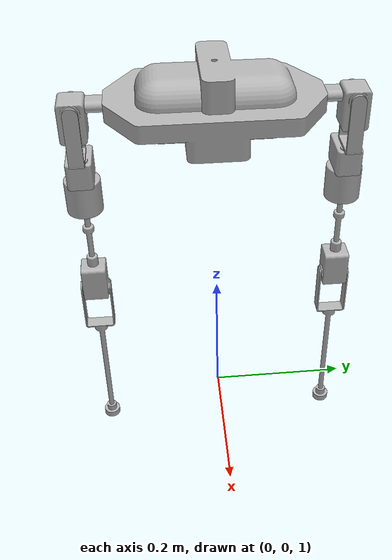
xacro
<?xml version="1.0" ?>
<robot name="antrop_arms" xmlns:xacro="http://www.ros.org/wiki/xacro">

<xacro:include filename="$(find antrop_arms_description)/urdf/materials.xacro" />
<xacro:include filename="$(find antrop_arms_description)/urdf/antrop_arms.trans" />
<xacro:include filename="$(find antrop_arms_description)/urdf/antrop_arms.gazebo" />
<!--Virtual links only used for simulation work-->
<link name="world"/>
<link name="right_ee_link"/>
<link name="left_ee_link"/>

<!--Actual robot links-->
<link name="base_link">
  <inertial>
    <origin xyz="1.066898751021674e-15 6.668117193885462e-17 -0.0018137714290285523" rpy="0 0 0"/>
    <mass value="17.13115280088791"/>
    <inertia ixx="0.071673" iyy="0.032901" izz="0.085379" ixy="0.0" iyz="0.0" ixz="0.0"/>
  </inertial>
  <visual>
    <origin xyz="0 0 0" rpy="0 0 0"/>
    <geometry>
      <mesh filename="package://antrop_arms_description/meshes/base_link.stl" scale="0.001 0.001 0.001"/>
    </geometry>
    <material name="silver"/>
  </visual>
  <collision>
    <origin xyz="0 0 0" rpy="0 0 0"/>
    <geometry>
      <mesh filename="package://antrop_arms_description/meshes/base_link.stl" scale="0.001 0.001 0.001"/>
    </geometry>
  </collision>
</link>

<!--Left side of the robot-->

<!--Left shoulder-->
<link name="Shoulder_Yaw_Structure_v1_1">
  <inertial>
    <origin xyz="-0.021135735062036764 -8.326672684688674e-16 -0.04093696874713262" rpy="0 0 0"/>
    <mass value="0.13081573332382615"/>
    <inertia ixx="9.8e-05" iyy="0.000152" izz="6.3e-05" ixy="-0.0" iyz="0.0" ixz="1e-06"/>
  </inertial>
  <visual>
    <origin xyz="-0.021 -0.18 0.0" rpy="0 0 0"/>
    <geometry>
      <mesh filename="package://antrop_arms_description/meshes/Shoulder_Yaw_Structure_v1_1.stl" scale="0.001 0.001 0.001"/>
    </geometry>
    <material name="silver"/>
  </visual>
  <collision>
    <origin xyz="-0.021 -0.18 0.0" rpy="0 0 0"/>
    <geometry>
      <mesh filename="package://antrop_arms_description/meshes/Shoulder_Yaw_Structure_v1_1.stl" scale="0.001 0.001 0.001"/>
    </geometry>
  </collision>
</link>

<link name="Servo_Herkulex_v1_1">
  <inertial>
    <origin xyz="-0.015296200031691265 -5.551115123125783e-17 -0.02073708217051337" rpy="0 0 0"/>
    <mass value="0.5836410679799175"/>
    <inertia ixx="0.00013" iyy="0.000221" izz="0.000207" ixy="0.0" iyz="0.0" ixz="-2e-06"/>
  </inertial>
  <visual>
    <origin xyz="0.0 -0.18 0.075" rpy="0 0 0"/>
    <geometry>
      <mesh filename="package://antrop_arms_description/meshes/Servo_Herkulex_v1_1.stl" scale="0.001 0.001 0.001"/>
    </geometry>
    <material name="silver"/>
  </visual>
  <collision>
    <origin xyz="0.0 -0.18 0.075" rpy="0 0 0"/>
    <geometry>
      <mesh filename="package://antrop_arms_description/meshes/Servo_Herkulex_v1_1.stl" scale="0.001 0.001 0.001"/>
    </geometry>
  </collision>
</link>

<link name="Shoulder_Yaw_Transmission_v1_1">
  <inertial>
    <origin xyz="-1.8166024240429124e-14 -5.551115123125783e-17 -0.023088428353467902" rpy="0 0 0"/>
    <mass value="0.7529944150379378"/>
    <inertia ixx="0.000272" iyy="0.000272" izz="0.000239" ixy="-0.0" iyz="-0.0" ixz="0.0"/>
  </inertial>
  <visual>
    <origin xyz="0.0155 -0.18 0.115" rpy="0 0 0"/>
    <geometry>
      <mesh filename="package://antrop_arms_description/meshes/Shoulder_Yaw_Transmission_v1_1.stl" scale="0.001 0.001 0.001"/>
    </geometry>
    <material name="silver"/>
  </visual>
  <collision>
    <origin xyz="0.0155 -0.18 0.115" rpy="0 0 0"/>
    <geometry>
      <mesh filename="package://antrop_arms_description/meshes/Shoulder_Yaw_Transmission_v1_1.stl" scale="0.001 0.001 0.001"/>
    </geometry>
  </collision>
</link>

<link name="shoulder_left_link_1">
  <inertial>
    <origin xyz="-0.0002500317321533693 0.035918090920304124 -0.013543028885077059" rpy="0 0 0"/>
    <mass value="0.6591423872621155"/>
    <inertia ixx="0.000324" iyy="0.000242" izz="0.000235" ixy="-9e-06" iyz="3.6e-05" ixz="2e-06"/>
  </inertial>
  <visual>
    <origin xyz="0.0 -0.14 -0.0" rpy="0 0 0"/>
    <geometry>
      <mesh filename="package://antrop_arms_description/meshes/shoulder_left_link_1.stl" scale="0.001 0.001 0.001"/>
    </geometry>
    <material name="silver"/>
  </visual>
  <collision>
    <origin xyz="0.0 -0.14 -0.0" rpy="0 0 0"/>
    <geometry>
      <mesh filename="package://antrop_arms_description/meshes/shoulder_left_link_1.stl" scale="0.001 0.001 0.001"/>
    </geometry>
  </collision>
</link>

<!--Left elbow-->
<link name="elbow_left_link_1">
  <inertial>
    <origin xyz="-1.899869150889799e-14 -0.00021228541858173133 -0.11684928259378977" rpy="0 0 0"/>
    <mass value="0.6214584962841803"/>
    <inertia ixx="0.000538" iyy="0.000531" izz="0.000118" ixy="0.0" iyz="-3e-06" ixz="0.0"/>
  </inertial>
  <visual>
    <origin xyz="0.0155 -0.18 0.163" rpy="0 0 0"/>
    <geometry>
      <mesh filename="package://antrop_arms_description/meshes/elbow_left_link_1.stl" scale="0.001 0.001 0.001"/>
    </geometry>
    <material name="silver"/>
  </visual>
  <collision>
    <origin xyz="0.0155 -0.18 0.163" rpy="0 0 0"/>
    <geometry>
      <mesh filename="package://antrop_arms_description/meshes/elbow_left_link_1.stl" scale="0.001 0.001 0.001"/>
    </geometry>
  </collision>
</link>

<!--Left forearm-->
<link name="forearm_left_link_1">
  <inertial>
    <origin xyz="-2.4015511801422917e-14 -0.020000000000116203 -0.14499270392199487" rpy="0 0 0"/>
    <mass value="0.20799291557495453"/>
    <inertia ixx="0.001901" iyy="0.001879" izz="3.1e-05" ixy="-0.0" iyz="0.0" ixz="-0.0"/>
  </inertial>
  <visual>
    <origin xyz="0.0155 0.16 0.3025" rpy="0 0 0"/>
    <geometry>
      <mesh filename="package://antrop_arms_description/meshes/forearm_left_link_1.stl" scale="0.001 0.001 0.001"/>
    </geometry>
    <material name="silver"/>
  </visual>
  <collision>
    <origin xyz="0.0155 0.16 0.3025" rpy="0 0 0"/>
    <geometry>
      <mesh filename="package://antrop_arms_description/meshes/forearm_left_link_1.stl" scale="0.001 0.001 0.001"/>
    </geometry>
  </collision>
</link>

<!--Right side of the robot-->

<!--Right shoulder-->

<link name="Shoulder_Yaw_Structure_v1__1__1">
  <inertial>
    <origin xyz="-0.021135735062036733 -9.43689570931383e-16 -0.040936968747132534" rpy="0 0 0"/>
    <mass value="0.13081573332382615"/>
    <inertia ixx="9.8e-05" iyy="0.000152" izz="6.3e-05" ixy="-0.0" iyz="0.0" ixz="1e-06"/>
  </inertial>
  <visual>
    <origin xyz="-0.021 0.18 0.0" rpy="0 0 0"/>
    <geometry>
      <mesh filename="package://antrop_arms_description/meshes/Shoulder_Yaw_Structure_v1__1__1.stl" scale="0.001 0.001 0.001"/>
    </geometry>
    <material name="silver"/>
  </visual>
  <collision>
    <origin xyz="-0.021 0.18 0.0" rpy="0 0 0"/>
    <geometry>
      <mesh filename="package://antrop_arms_description/meshes/Shoulder_Yaw_Structure_v1__1__1.stl" scale="0.001 0.001 0.001"/>
    </geometry>
  </collision>
</link>

<link name="Servo_Herkulex_v1__1__1">
  <inertial>
    <origin xyz="-0.015296200031691375 1.6653345369377348e-16 -0.020737082170513232" rpy="0 0 0"/>
    <mass value="0.5836410679799175"/>
    <inertia ixx="0.00013" iyy="0.000221" izz="0.000207" ixy="0.0" iyz="0.0" ixz="-2e-06"/>
  </inertial>
  <visual>
    <origin xyz="0.0 0.18 0.075" rpy="0 0 0"/>
    <geometry>
      <mesh filename="package://antrop_arms_description/meshes/Servo_Herkulex_v1__1__1.stl" scale="0.001 0.001 0.001"/>
    </geometry>
    <material name="silver"/>
  </visual>
  <collision>
    <origin xyz="0.0 0.18 0.075" rpy="0 0 0"/>
    <geometry>
      <mesh filename="package://antrop_arms_description/meshes/Servo_Herkulex_v1__1__1.stl" scale="0.001 0.001 0.001"/>
    </geometry>
  </collision>
</link>

<link name="Shoulder_Yaw_Transmission_v1__1__1">
  <inertial>
    <origin xyz="-1.8197249262996706e-14 1.942890293094024e-16 -0.023088428353467597" rpy="0 0 0"/>
    <mass value="0.7529944150379378"/>
    <inertia ixx="0.000272" iyy="0.000272" izz="0.000239" ixy="-0.0" iyz="0.0" ixz="0.0"/>
  </inertial>
  <visual>
    <origin xyz="0.0155 0.18 0.115" rpy="0 0 0"/>
    <geometry>
      <mesh filename="package://antrop_arms_description/meshes/Shoulder_Yaw_Transmission_v1__1__1.stl" scale="0.001 0.001 0.001"/>
    </geometry>
    <material name="silver"/>
  </visual>
  <collision>
    <origin xyz="0.0155 0.18 0.115" rpy="0 0 0"/>
    <geometry>
      <mesh filename="package://antrop_arms_description/meshes/Shoulder_Yaw_Transmission_v1__1__1.stl" scale="0.001 0.001 0.001"/>
    </geometry>
  </collision>
</link>

<link name="shoulder_right_link_1">
  <inertial>
    <origin xyz="-0.0002500317321433487 -0.03591809092030432 -0.013543028885077014" rpy="0 0 0"/>
    <mass value="0.6591423872621155"/>
    <inertia ixx="0.000324" iyy="0.000242" izz="0.000235" ixy="9e-06" iyz="-3.6e-05" ixz="2e-06"/>
  </inertial>
  <visual>
    <origin xyz="0.0 0.14 -0.0" rpy="0 0 0"/>
    <geometry>
      <mesh filename="package://antrop_arms_description/meshes/shoulder_right_link_1.stl" scale="0.001 0.001 0.001"/>
    </geometry>
    <material name="silver"/>
  </visual>
  <collision>
    <origin xyz="0.0 0.14 -0.0" rpy="0 0 0"/>
    <geometry>
      <mesh filename="package://antrop_arms_description/meshes/shoulder_right_link_1.stl" scale="0.001 0.001 0.001"/>
    </geometry>
  </collision>
</link>

<!--Right elbow-->
<link name="elbow_right_link_1">
  <inertial>
    <origin xyz="-1.675569405445998e-14 0.0002122854185845624 -0.11684928259381297" rpy="0 0 0"/>
    <mass value="0.6214584962841804"/>
    <inertia ixx="0.000538" iyy="0.000531" izz="0.000118" ixy="-0.0" iyz="3e-06" ixz="0.0"/>
  </inertial>
  <visual>
    <origin xyz="0.0155 0.18 0.163" rpy="0 0 0"/>
    <geometry>
      <mesh filename="package://antrop_arms_description/meshes/elbow_right_link_1.stl" scale="0.001 0.001 0.001"/>
    </geometry>
    <material name="silver"/>
  </visual>
  <collision>
    <origin xyz="0.0155 0.18 0.163" rpy="0 0 0"/>
    <geometry>
      <mesh filename="package://antrop_arms_description/meshes/elbow_right_link_1.stl" scale="0.001 0.001 0.001"/>
    </geometry>
  </collision>
</link>

<!--Right forearm-->
<link name="forearm_right_link_1">
  <inertial>
    <origin xyz="-2.80782341821606e-14 -0.020000000000115925 -0.14499270392199565" rpy="0 0 0"/>
    <mass value="0.20799291557495453"/>
    <inertia ixx="0.001901" iyy="0.001879" izz="3.1e-05" ixy="-0.0" iyz="0.0" ixz="-0.0"/>
  </inertial>
  <visual>
    <origin xyz="0.0155 -0.2 0.3025" rpy="0 0 0"/>
    <geometry>
      <mesh filename="package://antrop_arms_description/meshes/forearm_right_link_1.stl" scale="0.001 0.001 0.001"/>
    </geometry>
    <material name="silver"/>
  </visual>
  <collision>
    <origin xyz="0.0155 -0.2 0.3025" rpy="0 0 0"/>
    <geometry>
      <mesh filename="package://antrop_arms_description/meshes/forearm_right_link_1.stl" scale="0.001 0.001 0.001"/>
    </geometry>
  </collision>
</link>

<!--Robot joints-->
<joint name="base_shoulder_left_joint" type="revolute">
  <origin xyz="0.021 0.04 -0.0" rpy="0 0 0"/>
  <parent link="shoulder_left_link_1"/>
  <child link="Shoulder_Yaw_Structure_v1_1"/>
  <axis xyz="1.0 -0.0 0.0"/>
  <limit effort="20.1" velocity="2" lower="-0.174533" upper="1.5708" />
  <!--Here we should keep in mind exactly which arm we are looking at since the limits are opposite when it comes to upper/lower limit for each side-->
</joint>

<joint name="Rigid3" type="fixed">
  <origin xyz="-0.021 0.0 -0.075" rpy="0 0 0"/>
  <parent link="Shoulder_Yaw_Structure_v1_1"/>
  <child link="Servo_Herkulex_v1_1"/>
</joint>

<joint name="Rigid5" type="fixed">
  <origin xyz="-0.0155 0.0 -0.04" rpy="0 0 0"/>
  <parent link="Servo_Herkulex_v1_1"/>
  <child link="Shoulder_Yaw_Transmission_v1_1"/>
</joint>

<joint name="shoulder_elbow_left_joint" type="revolute">
  <origin xyz="0.0 0.0 -0.048" rpy="0 0 0"/>
  <parent link="Shoulder_Yaw_Transmission_v1_1"/>
  <child link="elbow_left_link_1"/>
  <axis xyz="0.0 0.0 1.0"/>
  <limit effort="20.1" velocity="2" lower="-1.5708" upper="1.5708" />
</joint>

<joint name="base_shoulder_right_joint" type="revolute">
  <origin xyz="0.021 -0.04 -0.0" rpy="0 0 0"/>
  <parent link="shoulder_right_link_1"/>
  <child link="Shoulder_Yaw_Structure_v1__1__1"/>
  <axis xyz="1 0 0" />
  <limit effort="20.1" velocity="2" lower="-1.5708" upper="0.174533" /><!--"0.174533" corresponds to 10 degrees transformed to radians-->
  <!--Here we should keep in mind exactly which arm we are looking at since the limits are opposite when it comes to upper/lower limit for each side-->
</joint>

<joint name="Rigid9" type="fixed">
  <origin xyz="-0.021 0.0 -0.075" rpy="0 0 0"/>
  <parent link="Shoulder_Yaw_Structure_v1__1__1"/>
  <child link="Servo_Herkulex_v1__1__1"/>
</joint>

<joint name="Rigid10" type="fixed">
  <origin xyz="-0.0155 0.0 -0.04" rpy="0 0 0"/>
  <parent link="Servo_Herkulex_v1__1__1"/>
  <child link="Shoulder_Yaw_Transmission_v1__1__1"/>
</joint>

<joint name="shoulder_elbow_right_joint" type="revolute">
  <origin xyz="0.0 0.0 -0.048" rpy="0 0 0"/>
  <parent link="Shoulder_Yaw_Transmission_v1__1__1"/>
  <child link="elbow_right_link_1"/>
  <axis xyz="0.0 -0.0 1.0"/>
  <limit effort="20.1" velocity="2" lower="-1.5708" upper="1.5708" />
</joint>

<joint name="base_shoulder_right_pitch_joint" type="revolute">
  <origin xyz="0.0 -0.14 0.0" rpy="0 0 0"/>
  <limit effort="20.1" velocity="2" lower="-1.5708" upper="1.5708" />
  <axis xyz="0 1 0" />
  <parent link="base_link"/>
  <child link="shoulder_right_link_1"/>
</joint>

<joint name="base_shoulder_left_pitch_joint" type="revolute">
  <origin xyz="0.0 0.14 0.0" rpy="0 0 0"/>
  <limit effort="20.1" velocity="2" lower="-1.5708" upper="1.5708" />
  <axis xyz="0 1 0" />
  <parent link="base_link"/>
  <child link="shoulder_left_link_1"/>
</joint>

<joint name="elbow_forearm_right_joint" type="revolute">
  <origin xyz="0.0 0.02 -0.1395" rpy="0 0 0"/>
  <limit effort="20.1" velocity="2" lower="-2.35619" upper="2.35619" />
  <axis xyz="0 1 0" />
  <parent link="elbow_right_link_1"/>
  <child link="forearm_right_link_1"/>
</joint>

<joint name="elbow_forearm_left_joint" type="revolute">
  <origin xyz="0.0 0.02 -0.1395" rpy="0 0 0"/>
  <limit effort="20.1" velocity="2" lower="-2.35619" upper="2.35619" />
  <parent link="elbow_left_link_1"/>
  <axis xyz="0 1 0" />
  <child link="forearm_left_link_1"/>
</joint>

<joint name="float_base_link" type="fixed">
  <origin xyz="0 0 1.5" rpy="0 0 0"/>
  <parent link="world"/>
  <child link="base_link"/>
</joint>

<joint name="right_ee" type="fixed">
  <origin xyz="0 0 -0.225" rpy="0 0 0"/>
  <parent link="forearm_right_link_1"/>
  <child link="right_ee_link"/>
</joint>

<joint name="left_ee" type="fixed">
  <origin xyz="0 0 -0.24" ryp="0 0 0"/>
  <parent link="forearm_left_link_1"/>
  <child link="left_ee_link"/>
</joint>
</robot>

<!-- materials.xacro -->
<robot name="antrop_arms" xmlns:xacro="http://www.ros.org/wiki/xacro" >

<material name="silver">
  <color rgba="0.700 0.700 0.700 1.000"/>
</material>

</robot>

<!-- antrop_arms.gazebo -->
<robot name="antrop_arms" xmlns:xacro="http://www.ros.org/wiki/xacro" >

<xacro:property name="body_color" value="Gazebo/Silver" />

<gazebo>
  <plugin name="control" filename="libgazebo_ros_control.so">
    <robotNamespace>/antrop_arms</robotNamespace>
  </plugin>
</gazebo>
<gazebo reference="base_link">
  <material>${body_color}</material>
  <mu1>0.2</mu1>
  <mu2>0.2</mu2>
  <selfCollide>true</selfCollide>
  <gravity>true</gravity>
</gazebo>

<gazebo reference="Shoulder_Yaw_Structure_v1_1">
  <material>${body_color}</material>
  <mu1>0.2</mu1>
  <mu2>0.2</mu2>
  <selfCollide>true</selfCollide>
</gazebo>

<gazebo reference="Servo_Herkulex_v1_1">
  <material>${body_color}</material>
  <mu1>0.2</mu1>
  <mu2>0.2</mu2>
  <selfCollide>true</selfCollide>
</gazebo>

<gazebo reference="Shoulder_Yaw_Transmission_v1_1">
  <material>${body_color}</material>
  <mu1>0.2</mu1>
  <mu2>0.2</mu2>
  <selfCollide>true</selfCollide>
</gazebo>

<gazebo reference="elbow_left_link_1">
  <material>${body_color}</material>
  <mu1>0.2</mu1>
  <mu2>0.2</mu2>
  <selfCollide>true</selfCollide>
</gazebo>

<gazebo reference="Shoulder_Yaw_Structure_v1__1__1">
  <material>${body_color}</material>
  <mu1>0.2</mu1>
  <mu2>0.2</mu2>
  <selfCollide>true</selfCollide>
</gazebo>

<gazebo reference="Servo_Herkulex_v1__1__1">
  <material>${body_color}</material>
  <mu1>0.2</mu1>
  <mu2>0.2</mu2>
  <selfCollide>true</selfCollide>
</gazebo>

<gazebo reference="Shoulder_Yaw_Transmission_v1__1__1">
  <material>${body_color}</material>
  <mu1>0.2</mu1>
  <mu2>0.2</mu2>
  <selfCollide>true</selfCollide>
</gazebo>

<gazebo reference="elbow_right_link_1">
  <material>${body_color}</material>
  <mu1>0.2</mu1>
  <mu2>0.2</mu2>
  <selfCollide>true</selfCollide>
</gazebo>

<gazebo reference="shoulder_right_link_1">
  <material>${body_color}</material>
  <mu1>0.2</mu1>
  <mu2>0.2</mu2>
  <selfCollide>true</selfCollide>
</gazebo>

<gazebo reference="shoulder_left_link_1">
  <material>${body_color}</material>
  <mu1>0.2</mu1>
  <mu2>0.2</mu2>
  <selfCollide>true</selfCollide>
</gazebo>

<gazebo reference="forearm_left_link_1">
  <material>${body_color}</material>
  <mu1>0.2</mu1>
  <mu2>0.2</mu2>
  <selfCollide>true</selfCollide>
</gazebo>

<gazebo reference="forearm_right_link_1">
  <material>${body_color}</material>
  <mu1>0.2</mu1>
  <mu2>0.2</mu2>
  <selfCollide>true</selfCollide>
</gazebo>

</robot>
